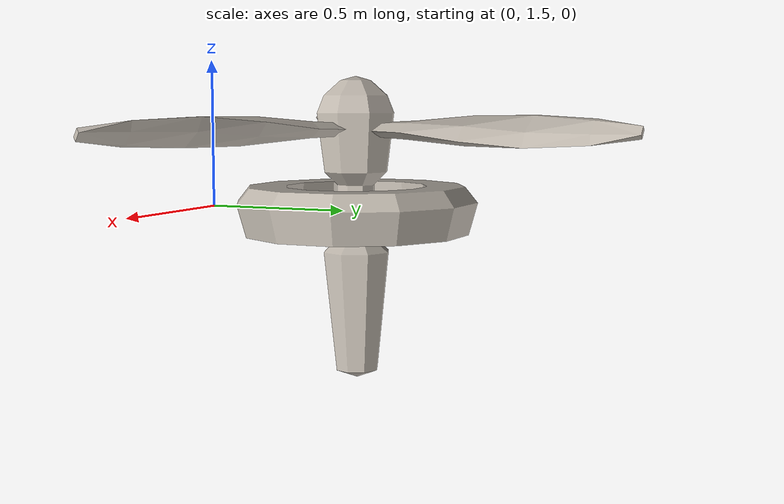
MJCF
<mujoco model="windturbine_tall_fan">
  <default>
    <default class="visual">
      <geom group="2" type="mesh" contype="0" conaffinity="0" />
    </default>
    <default class="collision">
      <geom group="3" type="mesh" />
    </default>
  </default>
  <asset>
    <texture type="2d" name="windturbine_tall_fan_spacebits_texture" file="spacebits_texture.png" />
    <material name="windturbine_tall_fan_spacebits_texture" texture="windturbine_tall_fan_spacebits_texture" specular="0.50196078" shininess="0.15999998099999999" />
    <mesh file="windturbine_tall_fan.obj" name="windturbine_tall_fan_windturbine_tall_fan" />
  </asset>
  <worldbody>
    <body name="windturbine_tall_fan">
      <geom material="windturbine_tall_fan_spacebits_texture" mesh="windturbine_tall_fan_windturbine_tall_fan" class="visual" />
      <geom mesh="windturbine_tall_fan_windturbine_tall_fan" class="collision" />
    </body>
  </worldbody>
</mujoco>
